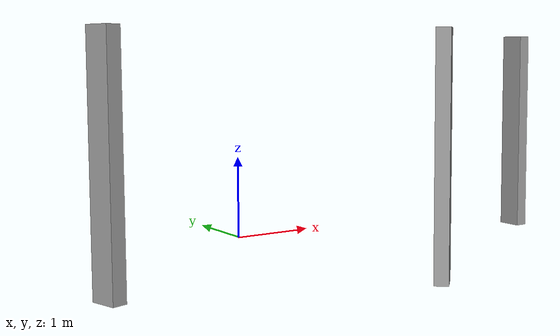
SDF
<?xml version='1.0'?>
<sdf version='1.7'>
  <model name='test.world'>
    <pose>0.502161 -1.67607 0 0 -0 0</pose>
    <link name='Wall_0'>
      <collision name='Wall_0_Collision'>
        <geometry>
          <box>
            <size>0.3 0.15 2.5</size>
          </box>
        </geometry>
        <pose>0 0 1.25 0 -0 0</pose>
      </collision>
      <visual name='Wall_0_Visual'>
        <pose>0 0 1.25 0 -0 0</pose>
        <geometry>
          <box>
            <size>0.3 0.15 2.5</size>
          </box>
        </geometry>
        <material>
          <script>
            <uri>file://media/materials/scripts/gazebo.material</uri>
            <name>Gazebo/Grey</name>
          </script>
          <ambient>1 1 1 1</ambient>
        </material>
        <meta>
          <layer>0</layer>
        </meta>
      </visual>
      <pose>-2.93157 -0.311489 0 0 -0 1.8326</pose>
    </link>
    <link name='Wall_2'>
      <collision name='Wall_2_Collision'>
        <geometry>
          <box>
            <size>0.3 0.15 2.5</size>
          </box>
        </geometry>
        <pose>0 0 1.25 0 -0 0</pose>
      </collision>
      <visual name='Wall_2_Visual'>
        <pose>0 0 1.25 0 -0 0</pose>
        <geometry>
          <box>
            <size>0.3 0.15 2.5</size>
          </box>
        </geometry>
        <material>
          <script>
            <uri>file://media/materials/scripts/gazebo.material</uri>
            <name>Gazebo/Grey</name>
          </script>
          <ambient>1 1 1 1</ambient>
        </material>
        <meta>
          <layer>0</layer>
        </meta>
      </visual>
      <pose>2.96784 0.361066 0 0 -0 1.5708</pose>
    </link>
    <link name='Wall_4'>
      <collision name='Wall_4_Collision'>
        <geometry>
          <box>
            <size>0.3 0.15 2.5</size>
          </box>
        </geometry>
        <pose>0 0 1.25 0 -0 0</pose>
      </collision>
      <visual name='Wall_4_Visual'>
        <pose>0 0 1.25 0 -0 0</pose>
        <geometry>
          <box>
            <size>0.3 0.15 2.5</size>
          </box>
        </geometry>
        <material>
          <script>
            <uri>file://media/materials/scripts/gazebo.material</uri>
            <name>Gazebo/Grey</name>
          </script>
          <ambient>1 1 1 1</ambient>
        </material>
        <meta>
          <layer>0</layer>
        </meta>
      </visual>
      <pose>-0.005194 -1.51697 0 0 -0 -2.35619</pose>
    </link>
    <static>1</static>
  </model>
</sdf>
